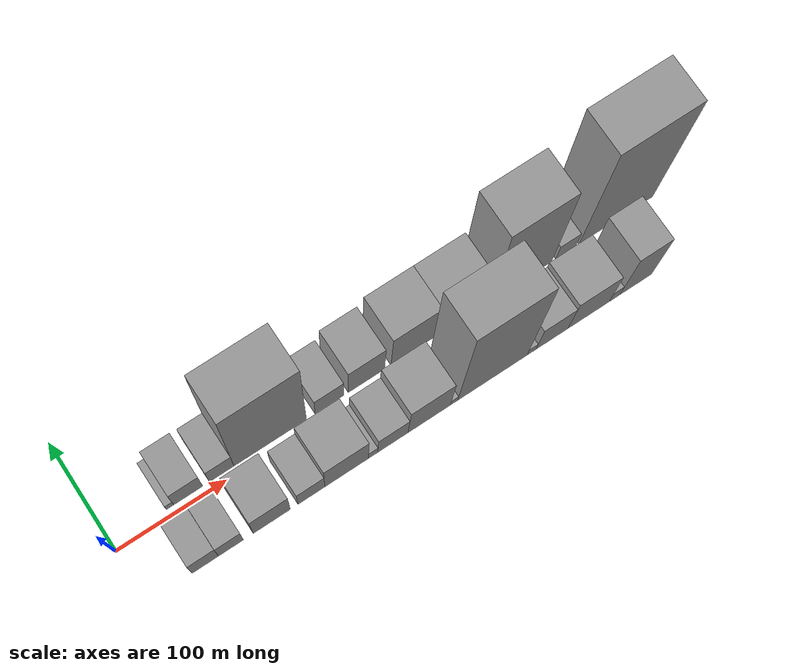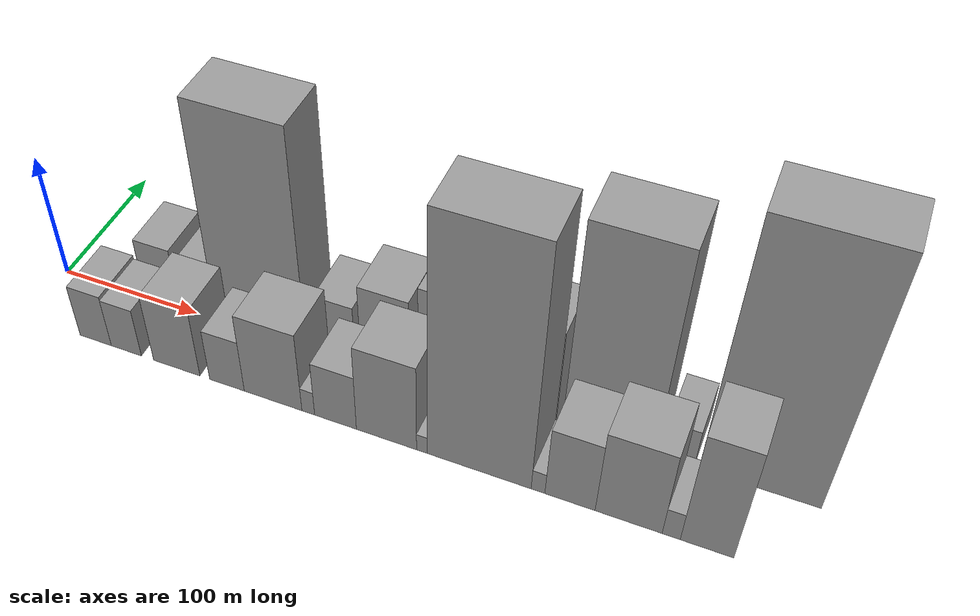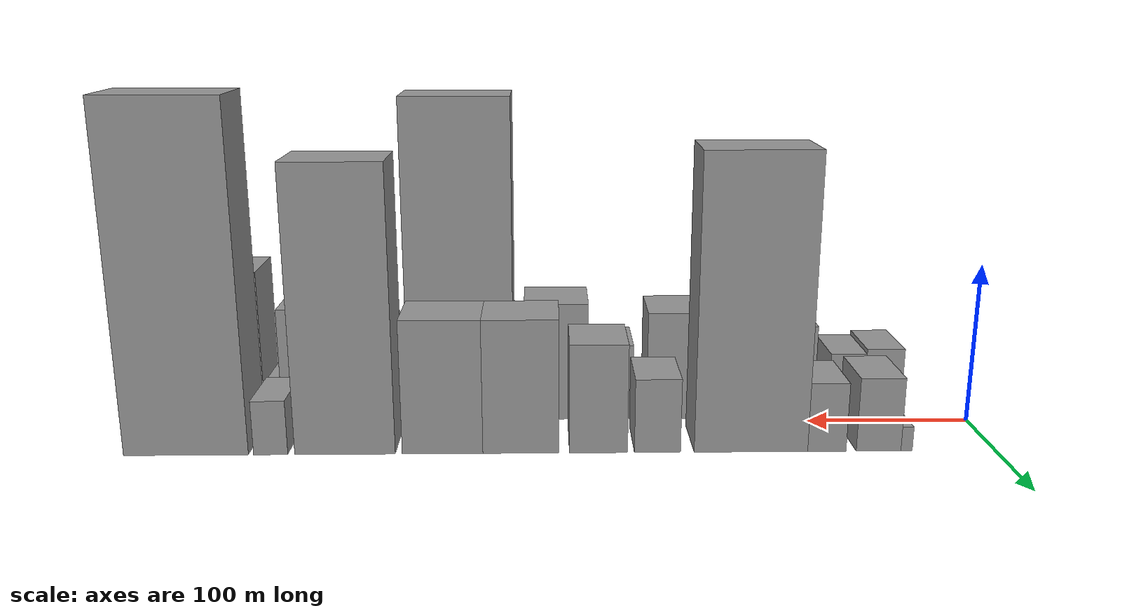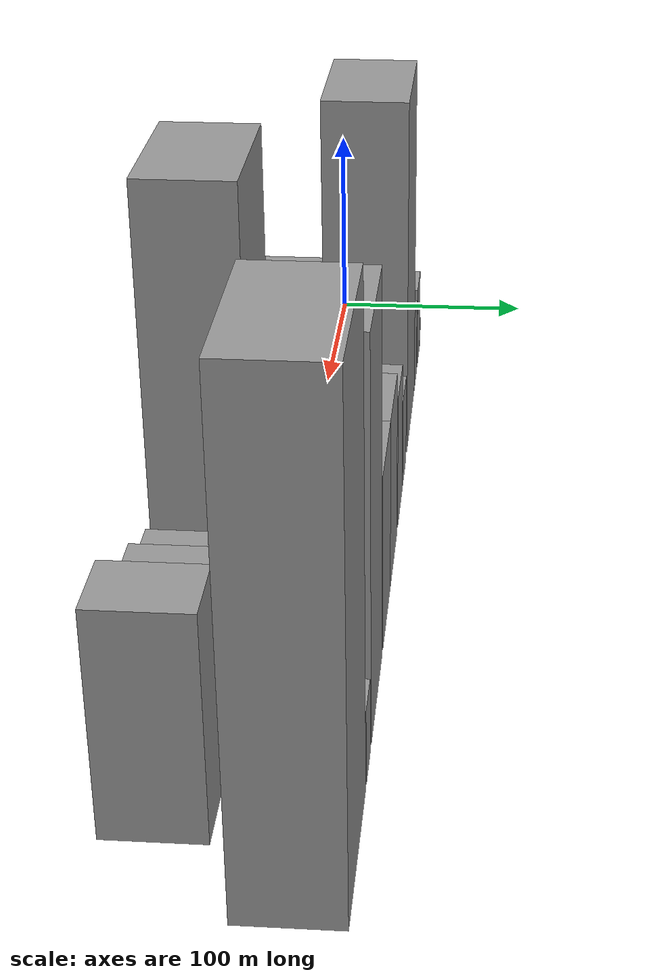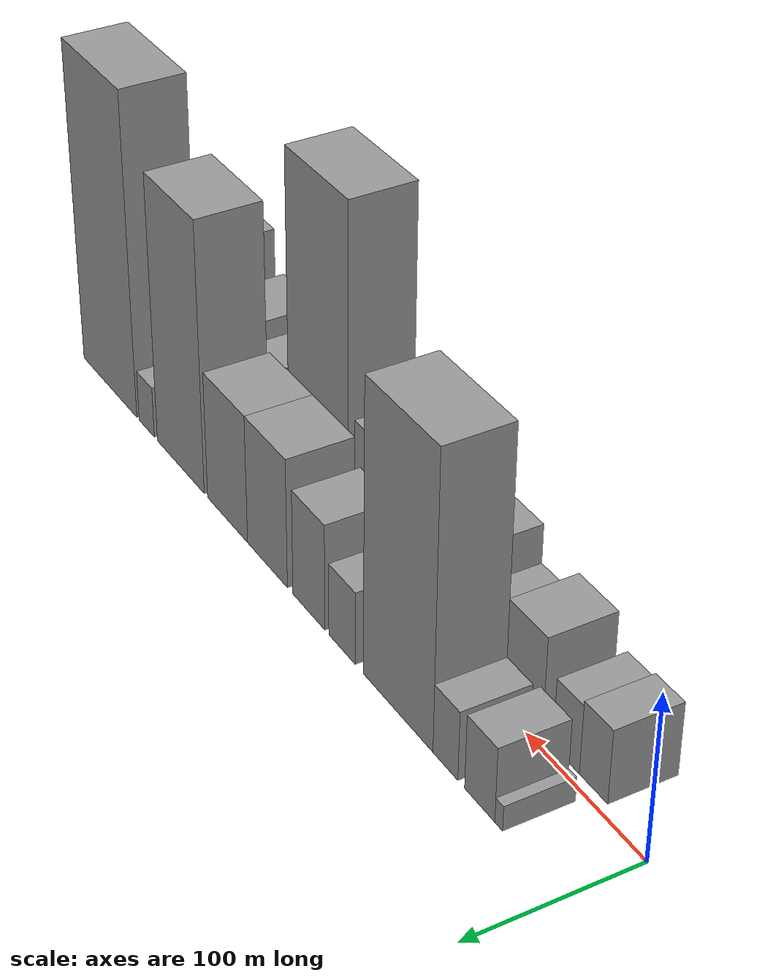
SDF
<sdf version="1.6">
 <world name="default">
  <scene>
   <sky><clouds><speed>12</speed></clouds></sky>
   <ambient>0.4 0.4 0.4 1</ambient>
   <background>0.7 0.7 0.7 1</background>
   <shadows>1</shadows>
  </scene>
  <gravity>0 0 -9.8066</gravity>
  <magnetic_field>6e-06 2.3e-05 -4.2e-05</magnetic_field>
  <physics default="0" name="default_physics" type="ode">
   <ode>
    <solver>
     <type>quick</type>
     <iters>10</iters>
     <sor>1.0</sor>
     <use_dynamic_moi_rescaling>0</use_dynamic_moi_rescaling>
    </solver>
    <constraints>
     <cfm>0</cfm>
     <erp>0.2</erp>
     <contact_max_correcting_vel>100</contact_max_correcting_vel>
     <contact_surface_layer>0.001</contact_surface_layer>
    </constraints>
   </ode>
   <max_step_size>0.004</max_step_size>
   <real_time_factor>1</real_time_factor>
   <real_time_update_rate>250</real_time_update_rate>
  </physics>
  <light name="sun" type="directional">
   <pose>0 0 10 0 0 0</pose>
   <diffuse>0.8 0.8 0.8 1</diffuse>
   <specular>0.2 0.2 0.2 1</specular>
   <attenuation>
    <range>1000</range>
    <constant>0.9</constant>
    <linear>0.01</linear>
    <quadratic>0.001</quadratic>
   </attenuation>
   <direction>-0.5 0.1 -0.9</direction>
  </light>
  <model name="building_1">
   <static>1</static>
   <pose>52.3240 26.0000 0 0.000000 0.000000 1.570796</pose>
   <link name="link">
    <pose>0 0 7.50 0 0 0</pose>
    <collision name="collision"><geometry><box><size>40.0000 6.6481 15.0000</size></box></geometry></collision>
    <visual name="visual">
     <cast_shadows>0</cast_shadows>
     <geometry><box><size>40.0000 6.6481 15.0000</size></box></geometry>
     <material>
      <script>
       <uri>model://grey_wall/materials/scripts</uri>
       <uri>model://grey_wall/materials/textures</uri>
       <name>vrc/grey_wall</name>
      </script>
     </material>
    </visual>
   </link>
  </model>
  <model name="building_2">
   <static>1</static>
   <pose>68.7693 26.0000 0 0.000000 0.000000 1.570796</pose>
   <link name="link">
    <pose>0 0 22.50 0 0 0</pose>
    <collision name="collision"><geometry><box><size>40.0000 26.2424 45.0000</size></box></geometry></collision>
    <visual name="visual">
     <cast_shadows>0</cast_shadows>
     <geometry><box><size>40.0000 26.2424 45.0000</size></box></geometry>
     <material>
      <script>
       <uri>model://grey_wall/materials/scripts</uri>
       <uri>model://grey_wall/materials/textures</uri>
       <name>vrc/grey_wall</name>
      </script>
     </material>
    </visual>
   </link>
  </model>
  <model name="building_3">
   <static>1</static>
   <pose>99.1417 26.0000 0 0.000000 0.000000 1.570796</pose>
   <link name="link">
    <pose>0 0 21.00 0 0 0</pose>
    <collision name="collision"><geometry><box><size>40.0000 22.5026 42.0000</size></box></geometry></collision>
    <visual name="visual">
     <cast_shadows>0</cast_shadows>
     <geometry><box><size>40.0000 22.5026 42.0000</size></box></geometry>
     <material>
      <script>
       <uri>model://grey_wall/materials/scripts</uri>
       <uri>model://grey_wall/materials/textures</uri>
       <name>vrc/grey_wall</name>
      </script>
     </material>
    </visual>
   </link>
  </model>
  <model name="building_4">
   <static>1</static>
   <pose>143.6283 26.0000 0 0.000000 0.000000 1.570796</pose>
   <link name="link">
    <pose>0 0 88.50 0 0 0</pose>
    <collision name="collision"><geometry><box><size>40.0000 66.4705 177.0000</size></box></geometry></collision>
    <visual name="visual">
     <cast_shadows>0</cast_shadows>
     <geometry><box><size>40.0000 66.4705 177.0000</size></box></geometry>
     <material>
      <script>
       <uri>model://grey_wall/materials/scripts</uri>
       <uri>model://grey_wall/materials/textures</uri>
       <name>vrc/grey_wall</name>
      </script>
     </material>
    </visual>
   </link>
  </model>
  <model name="building_5">
   <static>1</static>
   <pose>198.3083 26.0000 0 0.000000 0.000000 1.570796</pose>
   <link name="link">
    <pose>0 0 22.50 0 0 0</pose>
    <collision name="collision"><geometry><box><size>40.0000 26.8896 45.0000</size></box></geometry></collision>
    <visual name="visual">
     <cast_shadows>0</cast_shadows>
     <geometry><box><size>40.0000 26.8896 45.0000</size></box></geometry>
     <material>
      <script>
       <uri>model://grey_wall/materials/scripts</uri>
       <uri>model://grey_wall/materials/textures</uri>
       <name>vrc/grey_wall</name>
      </script>
     </material>
    </visual>
   </link>
  </model>
  <model name="building_6">
   <static>1</static>
   <pose>232.7136 26.0000 0 0.000000 0.000000 1.570796</pose>
   <link name="link">
    <pose>0 0 33.00 0 0 0</pose>
    <collision name="collision"><geometry><box><size>40.0000 33.9209 66.0000</size></box></geometry></collision>
    <visual name="visual">
     <cast_shadows>0</cast_shadows>
     <geometry><box><size>40.0000 33.9209 66.0000</size></box></geometry>
     <material>
      <script>
       <uri>model://grey_wall/materials/scripts</uri>
       <uri>model://grey_wall/materials/textures</uri>
       <name>vrc/grey_wall</name>
      </script>
     </material>
    </visual>
   </link>
  </model>
  <model name="building_7">
   <static>1</static>
   <pose>277.8805 26.0000 0 0.000000 0.000000 1.570796</pose>
   <link name="link">
    <pose>0 0 40.50 0 0 0</pose>
    <collision name="collision"><geometry><box><size>40.0000 44.4128 81.0000</size></box></geometry></collision>
    <visual name="visual">
     <cast_shadows>0</cast_shadows>
     <geometry><box><size>40.0000 44.4128 81.0000</size></box></geometry>
     <material>
      <script>
       <uri>model://grey_wall/materials/scripts</uri>
       <uri>model://grey_wall/materials/textures</uri>
       <name>vrc/grey_wall</name>
      </script>
     </material>
    </visual>
   </link>
  </model>
  <model name="building_8">
   <static>1</static>
   <pose>323.5168 26.0000 0 0.000000 0.000000 1.570796</pose>
   <link name="link">
    <pose>0 0 40.50 0 0 0</pose>
    <collision name="collision"><geometry><box><size>40.0000 46.8599 81.0000</size></box></geometry></collision>
    <visual name="visual">
     <cast_shadows>0</cast_shadows>
     <geometry><box><size>40.0000 46.8599 81.0000</size></box></geometry>
     <material>
      <script>
       <uri>model://grey_wall/materials/scripts</uri>
       <uri>model://grey_wall/materials/textures</uri>
       <name>vrc/grey_wall</name>
      </script>
     </material>
    </visual>
   </link>
  </model>
  <model name="building_9">
   <static>1</static>
   <pose>380.1011 26.0000 0 0.000000 0.000000 1.570796</pose>
   <link name="link">
    <pose>0 0 85.50 0 0 0</pose>
    <collision name="collision"><geometry><box><size>40.0000 58.3088 171.0000</size></box></geometry></collision>
    <visual name="visual">
     <cast_shadows>0</cast_shadows>
     <geometry><box><size>40.0000 58.3088 171.0000</size></box></geometry>
     <material>
      <script>
       <uri>model://grey_wall/materials/scripts</uri>
       <uri>model://grey_wall/materials/textures</uri>
       <name>vrc/grey_wall</name>
      </script>
     </material>
    </visual>
   </link>
  </model>
  <model name="building_10">
   <static>1</static>
   <pose>423.1552 26.0000 0 0.000000 0.000000 1.570796</pose>
   <link name="link">
    <pose>0 0 16.50 0 0 0</pose>
    <collision name="collision"><geometry><box><size>40.0000 19.7993 33.0000</size></box></geometry></collision>
    <visual name="visual">
     <cast_shadows>0</cast_shadows>
     <geometry><box><size>40.0000 19.7993 33.0000</size></box></geometry>
     <material>
      <script>
       <uri>model://grey_wall/materials/scripts</uri>
       <uri>model://grey_wall/materials/textures</uri>
       <name>vrc/grey_wall</name>
      </script>
     </material>
    </visual>
   </link>
  </model>
  <model name="building_11">
   <static>1</static>
   <pose>472.1192 26.0000 0 0.000000 0.000000 1.570796</pose>
   <link name="link">
    <pose>0 0 103.50 0 0 0</pose>
    <collision name="collision"><geometry><box><size>40.0000 72.1287 207.0000</size></box></geometry></collision>
    <visual name="visual">
     <cast_shadows>0</cast_shadows>
     <geometry><box><size>40.0000 72.1287 207.0000</size></box></geometry>
     <material>
      <script>
       <uri>model://grey_wall/materials/scripts</uri>
       <uri>model://grey_wall/materials/textures</uri>
       <name>vrc/grey_wall</name>
      </script>
     </material>
    </visual>
   </link>
  </model>
  <model name="building_12">
   <static>1</static>
   <pose>51.7603 -26.0000 0 0.000000 0.000000 1.570796</pose>
   <link name="link">
    <pose>0 0 22.50 0 0 0</pose>
    <collision name="collision"><geometry><box><size>40.0000 23.5205 45.0000</size></box></geometry></collision>
    <visual name="visual">
     <cast_shadows>0</cast_shadows>
     <geometry><box><size>40.0000 23.5205 45.0000</size></box></geometry>
     <material>
      <script>
       <uri>model://grey_wall/materials/scripts</uri>
       <uri>model://grey_wall/materials/textures</uri>
       <name>vrc/grey_wall</name>
      </script>
     </material>
    </visual>
   </link>
  </model>
  <model name="building_13">
   <static>1</static>
   <pose>74.7185 -26.0000 0 0.000000 0.000000 1.570796</pose>
   <link name="link">
    <pose>0 0 21.00 0 0 0</pose>
    <collision name="collision"><geometry><box><size>40.0000 22.3960 42.0000</size></box></geometry></collision>
    <visual name="visual">
     <cast_shadows>0</cast_shadows>
     <geometry><box><size>40.0000 22.3960 42.0000</size></box></geometry>
     <material>
      <script>
       <uri>model://grey_wall/materials/scripts</uri>
       <uri>model://grey_wall/materials/textures</uri>
       <name>vrc/grey_wall</name>
      </script>
     </material>
    </visual>
   </link>
  </model>
  <model name="building_14">
   <static>1</static>
   <pose>111.7384 -26.0000 0 0.000000 0.000000 1.570796</pose>
   <link name="link">
    <pose>0 0 30.00 0 0 0</pose>
    <collision name="collision"><geometry><box><size>40.0000 33.6438 60.0000</size></box></geometry></collision>
    <visual name="visual">
     <cast_shadows>0</cast_shadows>
     <geometry><box><size>40.0000 33.6438 60.0000</size></box></geometry>
     <material>
      <script>
       <uri>model://grey_wall/materials/scripts</uri>
       <uri>model://grey_wall/materials/textures</uri>
       <name>vrc/grey_wall</name>
      </script>
     </material>
    </visual>
   </link>
  </model>
  <model name="building_15">
   <static>1</static>
   <pose>147.8506 -26.0000 0 0.000000 0.000000 1.570796</pose>
   <link name="link">
    <pose>0 0 22.50 0 0 0</pose>
    <collision name="collision"><geometry><box><size>40.0000 24.5805 45.0000</size></box></geometry></collision>
    <visual name="visual">
     <cast_shadows>0</cast_shadows>
     <geometry><box><size>40.0000 24.5805 45.0000</size></box></geometry>
     <material>
      <script>
       <uri>model://grey_wall/materials/scripts</uri>
       <uri>model://grey_wall/materials/textures</uri>
       <name>vrc/grey_wall</name>
      </script>
     </material>
    </visual>
   </link>
  </model>
  <model name="building_16">
   <static>1</static>
   <pose>180.1401 -26.0000 0 0.000000 0.000000 1.570796</pose>
   <link name="link">
    <pose>0 0 34.50 0 0 0</pose>
    <collision name="collision"><geometry><box><size>40.0000 39.9987 69.0000</size></box></geometry></collision>
    <visual name="visual">
     <cast_shadows>0</cast_shadows>
     <geometry><box><size>40.0000 39.9987 69.0000</size></box></geometry>
     <material>
      <script>
       <uri>model://grey_wall/materials/scripts</uri>
       <uri>model://grey_wall/materials/textures</uri>
       <name>vrc/grey_wall</name>
      </script>
     </material>
    </visual>
   </link>
  </model>
  <model name="building_17">
   <static>1</static>
   <pose>204.4885 -26.0000 0 0.000000 0.000000 1.570796</pose>
   <link name="link">
    <pose>0 0 10.50 0 0 0</pose>
    <collision name="collision"><geometry><box><size>40.0000 8.6981 21.0000</size></box></geometry></collision>
    <visual name="visual">
     <cast_shadows>0</cast_shadows>
     <geometry><box><size>40.0000 8.6981 21.0000</size></box></geometry>
     <material>
      <script>
       <uri>model://grey_wall/materials/scripts</uri>
       <uri>model://grey_wall/materials/textures</uri>
       <name>vrc/grey_wall</name>
      </script>
     </material>
    </visual>
   </link>
  </model>
  <model name="building_18">
   <static>1</static>
   <pose>222.9173 -26.0000 0 0.000000 0.000000 1.570796</pose>
   <link name="link">
    <pose>0 0 24.00 0 0 0</pose>
    <collision name="collision"><geometry><box><size>40.0000 28.1595 48.0000</size></box></geometry></collision>
    <visual name="visual">
     <cast_shadows>0</cast_shadows>
     <geometry><box><size>40.0000 28.1595 48.0000</size></box></geometry>
     <material>
      <script>
       <uri>model://grey_wall/materials/scripts</uri>
       <uri>model://grey_wall/materials/textures</uri>
       <name>vrc/grey_wall</name>
      </script>
     </material>
    </visual>
   </link>
  </model>
  <model name="building_19">
   <static>1</static>
   <pose>256.8285 -26.0000 0 0.000000 0.000000 1.570796</pose>
   <link name="link">
    <pose>0 0 37.50 0 0 0</pose>
    <collision name="collision"><geometry><box><size>40.0000 39.6628 75.0000</size></box></geometry></collision>
    <visual name="visual">
     <cast_shadows>0</cast_shadows>
     <geometry><box><size>40.0000 39.6628 75.0000</size></box></geometry>
     <material>
      <script>
       <uri>model://grey_wall/materials/scripts</uri>
       <uri>model://grey_wall/materials/textures</uri>
       <name>vrc/grey_wall</name>
      </script>
     </material>
    </visual>
   </link>
  </model>
  <model name="building_20">
   <static>1</static>
   <pose>280.0878 -26.0000 0 0.000000 0.000000 1.570796</pose>
   <link name="link">
    <pose>0 0 7.50 0 0 0</pose>
    <collision name="collision"><geometry><box><size>40.0000 6.8558 15.0000</size></box></geometry></collision>
    <visual name="visual">
     <cast_shadows>0</cast_shadows>
     <geometry><box><size>40.0000 6.8558 15.0000</size></box></geometry>
     <material>
      <script>
       <uri>model://grey_wall/materials/scripts</uri>
       <uri>model://grey_wall/materials/textures</uri>
       <name>vrc/grey_wall</name>
      </script>
     </material>
    </visual>
   </link>
  </model>
  <model name="building_21">
   <static>1</static>
   <pose>316.4201 -26.0000 0 0.000000 0.000000 1.570796</pose>
   <link name="link">
    <pose>0 0 100.50 0 0 0</pose>
    <collision name="collision"><geometry><box><size>40.0000 65.8087 201.0000</size></box></geometry></collision>
    <visual name="visual">
     <cast_shadows>0</cast_shadows>
     <geometry><box><size>40.0000 65.8087 201.0000</size></box></geometry>
     <material>
      <script>
       <uri>model://grey_wall/materials/scripts</uri>
       <uri>model://grey_wall/materials/textures</uri>
       <name>vrc/grey_wall</name>
      </script>
     </material>
    </visual>
   </link>
  </model>
  <model name="building_22">
   <static>1</static>
   <pose>353.5674 -26.0000 0 0.000000 0.000000 1.570796</pose>
   <link name="link">
    <pose>0 0 9.00 0 0 0</pose>
    <collision name="collision"><geometry><box><size>40.0000 8.4860 18.0000</size></box></geometry></collision>
    <visual name="visual">
     <cast_shadows>0</cast_shadows>
     <geometry><box><size>40.0000 8.4860 18.0000</size></box></geometry>
     <material>
      <script>
       <uri>model://grey_wall/materials/scripts</uri>
       <uri>model://grey_wall/materials/textures</uri>
       <name>vrc/grey_wall</name>
      </script>
     </material>
    </visual>
   </link>
  </model>
  <model name="building_23">
   <static>1</static>
   <pose>373.0919 -26.0000 0 0.000000 0.000000 1.570796</pose>
   <link name="link">
    <pose>0 0 30.00 0 0 0</pose>
    <collision name="collision"><geometry><box><size>40.0000 30.5630 60.0000</size></box></geometry></collision>
    <visual name="visual">
     <cast_shadows>0</cast_shadows>
     <geometry><box><size>40.0000 30.5630 60.0000</size></box></geometry>
     <material>
      <script>
       <uri>model://grey_wall/materials/scripts</uri>
       <uri>model://grey_wall/materials/textures</uri>
       <name>vrc/grey_wall</name>
      </script>
     </material>
    </visual>
   </link>
  </model>
  <model name="building_24">
   <static>1</static>
   <pose>408.2720 -26.0000 0 0.000000 0.000000 1.570796</pose>
   <link name="link">
    <pose>0 0 36.00 0 0 0</pose>
    <collision name="collision"><geometry><box><size>40.0000 39.7973 72.0000</size></box></geometry></collision>
    <visual name="visual">
     <cast_shadows>0</cast_shadows>
     <geometry><box><size>40.0000 39.7973 72.0000</size></box></geometry>
     <material>
      <script>
       <uri>model://grey_wall/materials/scripts</uri>
       <uri>model://grey_wall/materials/textures</uri>
       <name>vrc/grey_wall</name>
      </script>
     </material>
    </visual>
   </link>
  </model>
  <model name="building_25">
   <static>1</static>
   <pose>433.4349 -26.0000 0 0.000000 0.000000 1.570796</pose>
   <link name="link">
    <pose>0 0 12.00 0 0 0</pose>
    <collision name="collision"><geometry><box><size>40.0000 10.5285 24.0000</size></box></geometry></collision>
    <visual name="visual">
     <cast_shadows>0</cast_shadows>
     <geometry><box><size>40.0000 10.5285 24.0000</size></box></geometry>
     <material>
      <script>
       <uri>model://grey_wall/materials/scripts</uri>
       <uri>model://grey_wall/materials/textures</uri>
       <name>vrc/grey_wall</name>
      </script>
     </material>
    </visual>
   </link>
  </model>
  <model name="building_26">
   <static>1</static>
   <pose>454.0738 -26.0000 0 0.000000 0.000000 1.570796</pose>
   <link name="link">
    <pose>0 0 48.00 0 0 0</pose>
    <collision name="collision"><geometry><box><size>40.0000 30.7493 96.0000</size></box></geometry></collision>
    <visual name="visual">
     <cast_shadows>0</cast_shadows>
     <geometry><box><size>40.0000 30.7493 96.0000</size></box></geometry>
     <material>
      <script>
       <uri>model://grey_wall/materials/scripts</uri>
       <uri>model://grey_wall/materials/textures</uri>
       <name>vrc/grey_wall</name>
      </script>
     </material>
    </visual>
   </link>
  </model>
 </world>
</sdf>
